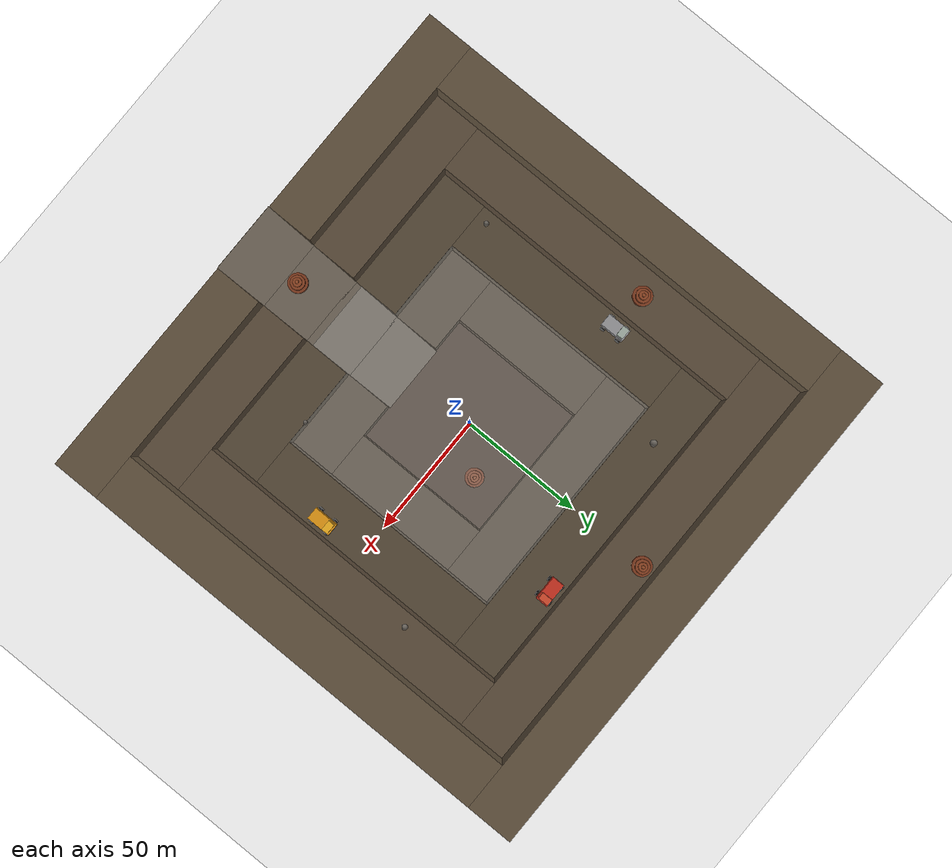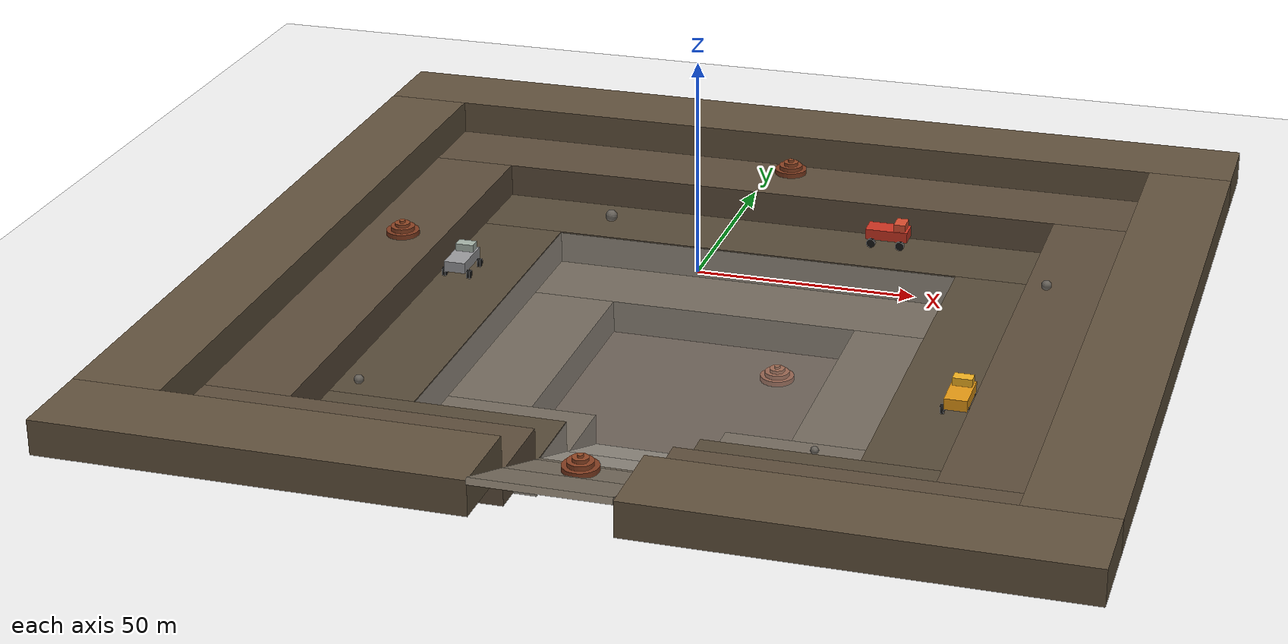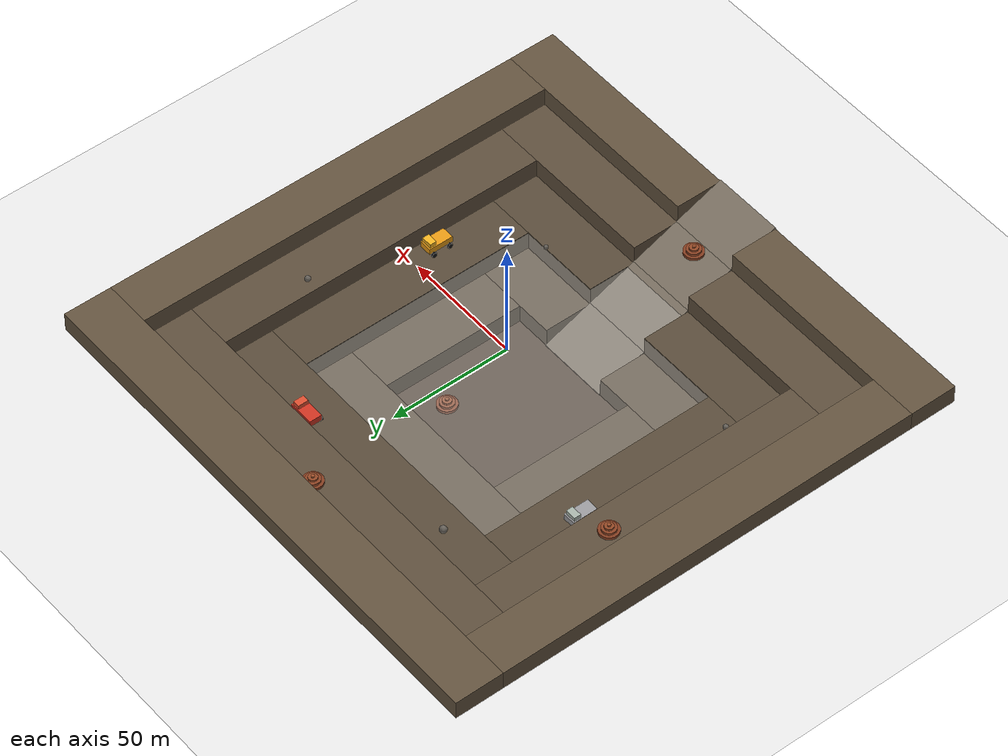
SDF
<?xml version="1.0"?>
<sdf version="1.9">
  <world name="iron_mine">

    <physics name="default_physics" type="ode">
      <max_step_size>0.004</max_step_size>
      <real_time_factor>1.0</real_time_factor>
      <real_time_update_rate>250</real_time_update_rate>
    </physics>

    <plugin filename="gz-sim-physics-system" name="gz::sim::systems::Physics"/>
    <plugin filename="gz-sim-user-commands-system" name="gz::sim::systems::UserCommands"/>
    <plugin filename="gz-sim-scene-broadcaster-system" name="gz::sim::systems::SceneBroadcaster"/>
    <plugin filename="gz-sim-sensors-system" name="gz::sim::systems::Sensors">
    <render_engine>ogre2</render_engine>
    </plugin>
    <plugin filename="gz-sim-contact-system" name="gz::sim::systems::Contact"/>

    <plugin
      filename="ignition-gazebo-particle-emitter2-system"
      name="ignition::gazebo::systems::ParticleEmitter2">
    </plugin>

    <light type="directional" name="sun">
      <pose>0 0 100 0 0 0</pose>
      <cast_shadows>true</cast_shadows>
      <diffuse>0.5 0.5 0.5 1.0</diffuse>
      <specular>0.1 0.1 0.1 1.0</specular>
      <direction>-0.4 0.3 -0.8</direction>
    </light>

    <model name="upper_bench_N">
      <static>true</static>
      <pose>0 100.0 -4.0 0 0 0</pose>
      <link name="link">
        <collision name="collision">
          <geometry><box><size>220 20.0 8</size></box></geometry>
        </collision>
        <visual name="visual">
          <geometry><box><size>220 20.0 8</size></box></geometry>
          <material>
            <ambient>0.30 0.24 0.18 1</ambient>
            <diffuse>0.38 0.32 0.24 1</diffuse>
          </material>
        </visual>
      </link>
      <plugin filename="ignition-gazebo-thermal-system" name="gz::sim::systems::Thermal">
        <temperature>308.0</temperature>
      </plugin>
    </model>

    <model name="upper_bench_E">
      <static>true</static>
      <pose>100.0 0 -4.0 0 0 0</pose>
      <link name="link">
        <collision name="collision">
          <geometry><box><size>20.0 180 8</size></box></geometry>
        </collision>
        <visual name="visual">
          <geometry><box><size>20.0 180 8</size></box></geometry>
          <material>
            <ambient>0.30 0.24 0.18 1</ambient>
            <diffuse>0.38 0.32 0.24 1</diffuse>
          </material>
        </visual>
      </link>
      <plugin filename="ignition-gazebo-thermal-system" name="gz::sim::systems::Thermal">
        <temperature>308.0</temperature>
      </plugin>
    </model>

    <model name="upper_bench_W">
      <static>true</static>
      <pose>-100.0 0 -4.0 0 0 0</pose>
      <link name="link">
        <collision name="collision">
          <geometry><box><size>20.0 180 8</size></box></geometry>
        </collision>
        <visual name="visual">
          <geometry><box><size>20.0 180 8</size></box></geometry>
          <material>
            <ambient>0.30 0.24 0.18 1</ambient>
            <diffuse>0.38 0.32 0.24 1</diffuse>
          </material>
        </visual>
      </link>
      <plugin filename="ignition-gazebo-thermal-system" name="gz::sim::systems::Thermal">
        <temperature>308.0</temperature>
      </plugin>
    </model>

    <model name="upper_bench_S_a">
      <static>true</static>
      <pose>-62.5 -100.0 -4.0 0 0 0</pose>
      <link name="link">
        <collision name="collision">
          <geometry><box><size>95.0 20.0 8</size></box></geometry>
        </collision>
        <visual name="visual">
          <geometry><box><size>95.0 20.0 8</size></box></geometry>
          <material>
            <ambient>0.30 0.24 0.18 1</ambient>
            <diffuse>0.38 0.32 0.24 1</diffuse>
          </material>
        </visual>
      </link>
      <plugin filename="ignition-gazebo-thermal-system" name="gz::sim::systems::Thermal">
        <temperature>308.0</temperature>
      </plugin>
    </model>

    <model name="upper_bench_S_b">
      <static>true</static>
      <pose>62.5 -100.0 -4.0 0 0 0</pose>
      <link name="link">
        <collision name="collision">
          <geometry><box><size>95.0 20.0 8</size></box></geometry>
        </collision>
        <visual name="visual">
          <geometry><box><size>95.0 20.0 8</size></box></geometry>
          <material>
            <ambient>0.30 0.24 0.18 1</ambient>
            <diffuse>0.38 0.32 0.24 1</diffuse>
          </material>
        </visual>
      </link>
      <plugin filename="ignition-gazebo-thermal-system" name="gz::sim::systems::Thermal">
        <temperature>308.0</temperature>
      </plugin>
    </model>

    <model name="upper_bench_ramp">
      <static>true</static>
      <pose>0 -100.0 -4.0 -0.3805063771123649 0 0</pose>
      <link name="link">
        <collision name="collision">
          <geometry><box><size>30.0 22.0 1.5</size></box></geometry>
        </collision>
        <visual name="visual">
          <geometry><box><size>30.0 22.0 1.5</size></box></geometry>
          <material>
            <ambient>0.42 0.38 0.34 1</ambient>
            <diffuse>0.50 0.46 0.40 1</diffuse>
          </material>
        </visual>
      </link>
      <plugin filename="ignition-gazebo-thermal-system" name="gz::sim::systems::Thermal">
        <temperature>310.0</temperature>
      </plugin>
    </model>

    <model name="mine_bench_1_N">
      <static>true</static>
      <pose>0 80.0 -12.0 0 0 0</pose>
      <link name="link">
        <collision name="collision">
          <geometry><box><size>180 20.0 8</size></box></geometry>
        </collision>
        <visual name="visual">
          <geometry><box><size>180 20.0 8</size></box></geometry>
          <material>
            <ambient>0.28 0.22 0.17 1</ambient>
            <diffuse>0.36 0.30 0.23 1</diffuse>
          </material>
        </visual>
      </link>
      <plugin filename="ignition-gazebo-thermal-system" name="gz::sim::systems::Thermal">
        <temperature>305.0</temperature>
      </plugin>
    </model>

    <model name="mine_bench_1_E">
      <static>true</static>
      <pose>80.0 0 -12.0 0 0 0</pose>
      <link name="link">
        <collision name="collision">
          <geometry><box><size>20.0 140 8</size></box></geometry>
        </collision>
        <visual name="visual">
          <geometry><box><size>20.0 140 8</size></box></geometry>
          <material>
            <ambient>0.28 0.22 0.17 1</ambient>
            <diffuse>0.36 0.30 0.23 1</diffuse>
          </material>
        </visual>
      </link>
      <plugin filename="ignition-gazebo-thermal-system" name="gz::sim::systems::Thermal">
        <temperature>305.0</temperature>
      </plugin>
    </model>

    <model name="mine_bench_1_W">
      <static>true</static>
      <pose>-80.0 0 -12.0 0 0 0</pose>
      <link name="link">
        <collision name="collision">
          <geometry><box><size>20.0 140 8</size></box></geometry>
        </collision>
        <visual name="visual">
          <geometry><box><size>20.0 140 8</size></box></geometry>
          <material>
            <ambient>0.28 0.22 0.17 1</ambient>
            <diffuse>0.36 0.30 0.23 1</diffuse>
          </material>
        </visual>
      </link>
      <plugin filename="ignition-gazebo-thermal-system" name="gz::sim::systems::Thermal">
        <temperature>305.0</temperature>
      </plugin>
    </model>

    <model name="mine_bench_1_S_a">
      <static>true</static>
      <pose>-52.5 -80.0 -12.0 0 0 0</pose>
      <link name="link">
        <collision name="collision">
          <geometry><box><size>75.0 20.0 8</size></box></geometry>
        </collision>
        <visual name="visual">
          <geometry><box><size>75.0 20.0 8</size></box></geometry>
          <material>
            <ambient>0.28 0.22 0.17 1</ambient>
            <diffuse>0.36 0.30 0.23 1</diffuse>
          </material>
        </visual>
      </link>
      <plugin filename="ignition-gazebo-thermal-system" name="gz::sim::systems::Thermal">
        <temperature>305.0</temperature>
      </plugin>
    </model>

    <model name="mine_bench_1_S_b">
      <static>true</static>
      <pose>52.5 -80.0 -12.0 0 0 0</pose>
      <link name="link">
        <collision name="collision">
          <geometry><box><size>75.0 20.0 8</size></box></geometry>
        </collision>
        <visual name="visual">
          <geometry><box><size>75.0 20.0 8</size></box></geometry>
          <material>
            <ambient>0.28 0.22 0.17 1</ambient>
            <diffuse>0.36 0.30 0.23 1</diffuse>
          </material>
        </visual>
      </link>
      <plugin filename="ignition-gazebo-thermal-system" name="gz::sim::systems::Thermal">
        <temperature>305.0</temperature>
      </plugin>
    </model>

    <model name="mine_bench_1_ramp">
      <static>true</static>
      <pose>0 -80.0 -12.0 -0.3805063771123649 0 0</pose>
      <link name="link">
        <collision name="collision">
          <geometry><box><size>30.0 22.0 1.5</size></box></geometry>
        </collision>
        <visual name="visual">
          <geometry><box><size>30.0 22.0 1.5</size></box></geometry>
          <material>
            <ambient>0.42 0.38 0.34 1</ambient>
            <diffuse>0.50 0.46 0.40 1</diffuse>
          </material>
        </visual>
      </link>
      <plugin filename="ignition-gazebo-thermal-system" name="gz::sim::systems::Thermal">
        <temperature>307.0</temperature>
      </plugin>
    </model>

    <model name="mine_bench_2_N">
      <static>true</static>
      <pose>0 60.0 -20.0 0 0 0</pose>
      <link name="link">
        <collision name="collision">
          <geometry><box><size>140 20.0 8</size></box></geometry>
        </collision>
        <visual name="visual">
          <geometry><box><size>140 20.0 8</size></box></geometry>
          <material>
            <ambient>0.26 0.21 0.16 1</ambient>
            <diffuse>0.34 0.29 0.22 1</diffuse>
          </material>
        </visual>
      </link>
      <plugin filename="ignition-gazebo-thermal-system" name="gz::sim::systems::Thermal">
        <temperature>303.0</temperature>
      </plugin>
    </model>

    <model name="mine_bench_2_E">
      <static>true</static>
      <pose>60.0 0 -20.0 0 0 0</pose>
      <link name="link">
        <collision name="collision">
          <geometry><box><size>20.0 100 8</size></box></geometry>
        </collision>
        <visual name="visual">
          <geometry><box><size>20.0 100 8</size></box></geometry>
          <material>
            <ambient>0.26 0.21 0.16 1</ambient>
            <diffuse>0.34 0.29 0.22 1</diffuse>
          </material>
        </visual>
      </link>
      <plugin filename="ignition-gazebo-thermal-system" name="gz::sim::systems::Thermal">
        <temperature>303.0</temperature>
      </plugin>
    </model>

    <model name="mine_bench_2_W">
      <static>true</static>
      <pose>-60.0 0 -20.0 0 0 0</pose>
      <link name="link">
        <collision name="collision">
          <geometry><box><size>20.0 100 8</size></box></geometry>
        </collision>
        <visual name="visual">
          <geometry><box><size>20.0 100 8</size></box></geometry>
          <material>
            <ambient>0.26 0.21 0.16 1</ambient>
            <diffuse>0.34 0.29 0.22 1</diffuse>
          </material>
        </visual>
      </link>
      <plugin filename="ignition-gazebo-thermal-system" name="gz::sim::systems::Thermal">
        <temperature>303.0</temperature>
      </plugin>
    </model>

    <model name="mine_bench_2_S_a">
      <static>true</static>
      <pose>-42.5 -60.0 -20.0 0 0 0</pose>
      <link name="link">
        <collision name="collision">
          <geometry><box><size>55.0 20.0 8</size></box></geometry>
        </collision>
        <visual name="visual">
          <geometry><box><size>55.0 20.0 8</size></box></geometry>
          <material>
            <ambient>0.26 0.21 0.16 1</ambient>
            <diffuse>0.34 0.29 0.22 1</diffuse>
          </material>
        </visual>
      </link>
      <plugin filename="ignition-gazebo-thermal-system" name="gz::sim::systems::Thermal">
        <temperature>303.0</temperature>
      </plugin>
    </model>

    <model name="mine_bench_2_S_b">
      <static>true</static>
      <pose>42.5 -60.0 -20.0 0 0 0</pose>
      <link name="link">
        <collision name="collision">
          <geometry><box><size>55.0 20.0 8</size></box></geometry>
        </collision>
        <visual name="visual">
          <geometry><box><size>55.0 20.0 8</size></box></geometry>
          <material>
            <ambient>0.26 0.21 0.16 1</ambient>
            <diffuse>0.34 0.29 0.22 1</diffuse>
          </material>
        </visual>
      </link>
      <plugin filename="ignition-gazebo-thermal-system" name="gz::sim::systems::Thermal">
        <temperature>303.0</temperature>
      </plugin>
    </model>

    <model name="mine_bench_2_ramp">
      <static>true</static>
      <pose>0 -60.0 -20.0 -0.3805063771123649 0 0</pose>
      <link name="link">
        <collision name="collision">
          <geometry><box><size>30.0 22.0 1.5</size></box></geometry>
        </collision>
        <visual name="visual">
          <geometry><box><size>30.0 22.0 1.5</size></box></geometry>
          <material>
            <ambient>0.42 0.38 0.34 1</ambient>
            <diffuse>0.50 0.46 0.40 1</diffuse>
          </material>
        </visual>
      </link>
      <plugin filename="ignition-gazebo-thermal-system" name="gz::sim::systems::Thermal">
        <temperature>305.0</temperature>
      </plugin>
    </model>

    <model name="mine_bench_3_N">
      <static>true</static>
      <pose>0 40.0 -28.0 0 0 0</pose>
      <link name="link">
        <collision name="collision">
          <geometry><box><size>100 20.0 8</size></box></geometry>
        </collision>
        <visual name="visual">
          <geometry><box><size>100 20.0 8</size></box></geometry>
          <material>
            <ambient>0.24 0.19 0.14 1</ambient>
            <diffuse>0.32 0.27 0.20 1</diffuse>
          </material>
        </visual>
      </link>
      <plugin filename="ignition-gazebo-thermal-system" name="gz::sim::systems::Thermal">
        <temperature>298.0</temperature>
      </plugin>
    </model>

    <model name="mine_bench_3_E">
      <static>true</static>
      <pose>40.0 0 -28.0 0 0 0</pose>
      <link name="link">
        <collision name="collision">
          <geometry><box><size>20.0 60 8</size></box></geometry>
        </collision>
        <visual name="visual">
          <geometry><box><size>20.0 60 8</size></box></geometry>
          <material>
            <ambient>0.24 0.19 0.14 1</ambient>
            <diffuse>0.32 0.27 0.20 1</diffuse>
          </material>
        </visual>
      </link>
      <plugin filename="ignition-gazebo-thermal-system" name="gz::sim::systems::Thermal">
        <temperature>298.0</temperature>
      </plugin>
    </model>

    <model name="mine_bench_3_W">
      <static>true</static>
      <pose>-40.0 0 -28.0 0 0 0</pose>
      <link name="link">
        <collision name="collision">
          <geometry><box><size>20.0 60 8</size></box></geometry>
        </collision>
        <visual name="visual">
          <geometry><box><size>20.0 60 8</size></box></geometry>
          <material>
            <ambient>0.24 0.19 0.14 1</ambient>
            <diffuse>0.32 0.27 0.20 1</diffuse>
          </material>
        </visual>
      </link>
      <plugin filename="ignition-gazebo-thermal-system" name="gz::sim::systems::Thermal">
        <temperature>298.0</temperature>
      </plugin>
    </model>

    <model name="mine_bench_3_S_a">
      <static>true</static>
      <pose>-32.5 -40.0 -28.0 0 0 0</pose>
      <link name="link">
        <collision name="collision">
          <geometry><box><size>35.0 20.0 8</size></box></geometry>
        </collision>
        <visual name="visual">
          <geometry><box><size>35.0 20.0 8</size></box></geometry>
          <material>
            <ambient>0.24 0.19 0.14 1</ambient>
            <diffuse>0.32 0.27 0.20 1</diffuse>
          </material>
        </visual>
      </link>
      <plugin filename="ignition-gazebo-thermal-system" name="gz::sim::systems::Thermal">
        <temperature>298.0</temperature>
      </plugin>
    </model>

    <model name="mine_bench_3_S_b">
      <static>true</static>
      <pose>32.5 -40.0 -28.0 0 0 0</pose>
      <link name="link">
        <collision name="collision">
          <geometry><box><size>35.0 20.0 8</size></box></geometry>
        </collision>
        <visual name="visual">
          <geometry><box><size>35.0 20.0 8</size></box></geometry>
          <material>
            <ambient>0.24 0.19 0.14 1</ambient>
            <diffuse>0.32 0.27 0.20 1</diffuse>
          </material>
        </visual>
      </link>
      <plugin filename="ignition-gazebo-thermal-system" name="gz::sim::systems::Thermal">
        <temperature>298.0</temperature>
      </plugin>
    </model>

    <model name="mine_bench_3_ramp">
      <static>true</static>
      <pose>0 -40.0 -28.0 -0.3805063771123649 0 0</pose>
      <link name="link">
        <collision name="collision">
          <geometry><box><size>30.0 22.0 1.5</size></box></geometry>
        </collision>
        <visual name="visual">
          <geometry><box><size>30.0 22.0 1.5</size></box></geometry>
          <material>
            <ambient>0.42 0.38 0.34 1</ambient>
            <diffuse>0.50 0.46 0.40 1</diffuse>
          </material>
        </visual>
      </link>
      <plugin filename="ignition-gazebo-thermal-system" name="gz::sim::systems::Thermal">
        <temperature>300.0</temperature>
      </plugin>
    </model>

    <model name="mine_floor">
      <static>true</static>
      <pose>0 0 -33 0 0 0</pose>
      <link name="floor_link">
        <collision name="collision">
          <geometry><box><size>60 60 2</size></box></geometry>
        </collision>
        <visual name="visual">
          <geometry><box><size>60 60 2</size></box></geometry>
          <material>
            <ambient>0.20 0.16 0.12 1</ambient>
            <diffuse>0.28 0.22 0.17 1</diffuse>
          </material>
        </visual>
      </link>
      <plugin filename="ignition-gazebo-thermal-system" name="gz::sim::systems::Thermal">
        <temperature>293.0</temperature>
      </plugin>
    </model>

    <include>
      <uri>model://asphalt_plane</uri>
      <name>haul_road_1</name>
      <pose>55 0 -16 0 0 0</pose>
      <plugin filename="ignition-gazebo-thermal-system" name="gz::sim::systems::Thermal">
        <temperature>328.0</temperature>
      </plugin>
    </include>
    <include>
      <uri>model://asphalt_plane</uri>
      <name>haul_road_2</name>
      <pose>-55 0 -16 0 0 0</pose>
      <plugin filename="ignition-gazebo-thermal-system" name="gz::sim::systems::Thermal">
        <temperature>328.0</temperature>
      </plugin>
    </include>
    <include>
      <uri>model://asphalt_plane</uri>
      <name>haul_road_3</name>
      <pose>0 55 -16 0 0 1.5708</pose>
      <plugin filename="ignition-gazebo-thermal-system" name="gz::sim::systems::Thermal">
        <temperature>328.0</temperature>
      </plugin>
    </include>

    <model name="boulder_1">
      <static>true</static>
      <pose>75 30 -6.8 0.2 0.1 0.4</pose>
      <link name="link">
        <collision name="collision"><geometry><sphere><radius>1.2</radius></sphere></geometry></collision>
        <visual name="visual">
          <geometry><sphere><radius>1.2</radius></sphere></geometry>
          <material><ambient>0.30 0.28 0.25 1</ambient><diffuse>0.40 0.38 0.35 1</diffuse></material>
        </visual>
      </link>
      <plugin filename="ignition-gazebo-thermal-system" name="gz::sim::systems::Thermal">
        <temperature>315.0</temperature>
      </plugin>
    </model>

    <model name="boulder_2">
      <static>true</static>
      <pose>-40 60 -14.5 0 0.3 1.0</pose>
      <link name="link">
        <collision name="collision"><geometry><sphere><radius>1.5</radius></sphere></geometry></collision>
        <visual name="visual">
          <geometry><sphere><radius>1.5</radius></sphere></geometry>
          <material><ambient>0.30 0.28 0.25 1</ambient><diffuse>0.40 0.38 0.35 1</diffuse></material>
        </visual>
      </link>
      <plugin filename="ignition-gazebo-thermal-system" name="gz::sim::systems::Thermal">
        <temperature>300.0</temperature>
      </plugin>
    </model>

    <model name="boulder_3">
      <static>true</static>
      <pose>40 -50 -15.1 0.1 0 2.1</pose>
      <link name="link">
        <collision name="collision"><geometry><sphere><radius>0.9</radius></sphere></geometry></collision>
        <visual name="visual">
          <geometry><sphere><radius>0.9</radius></sphere></geometry>
          <material><ambient>0.30 0.28 0.25 1</ambient><diffuse>0.40 0.38 0.35 1</diffuse></material>
        </visual>
      </link>
      <plugin filename="ignition-gazebo-thermal-system" name="gz::sim::systems::Thermal">
        <temperature>325.0</temperature>
      </plugin>
    </model>

    <model name="boulder_4">
      <static>true</static>
      <pose>-65 -45 -14.9 0.1 0.2 0.8</pose>
      <link name="link">
        <collision name="collision"><geometry><sphere><radius>1.1</radius></sphere></geometry></collision>
        <visual name="visual">
          <geometry><sphere><radius>1.1</radius></sphere></geometry>
          <material><ambient>0.30 0.28 0.25 1</ambient><diffuse>0.40 0.38 0.35 1</diffuse></material>
        </visual>
      </link>
      <plugin filename="ignition-gazebo-thermal-system" name="gz::sim::systems::Thermal">
        <temperature>292.0</temperature>
      </plugin>
    </model>

    <include>
      <uri>model://ore_stockpile</uri>
      <name>ore_stockpile_1</name>
      <pose>-80 20 -8 0 0 0.3</pose>
      <plugin filename="ignition-gazebo-thermal-system" name="gz::sim::systems::Thermal">
        <temperature>302.0</temperature>
      </plugin>
    </include>
    <include>
      <uri>model://ore_stockpile</uri>
      <name>ore_stockpile_2</name>
      <pose>0 85 -8 0 0 1.1</pose>
      <plugin filename="ignition-gazebo-thermal-system" name="gz::sim::systems::Thermal">
        <temperature>298.0</temperature>
      </plugin>
    </include>
    <include>
      <uri>model://ore_stockpile</uri>
      <name>ore_stockpile_3</name>
      <pose>0 -85 -8 0 0 2.0</pose>
      <plugin filename="ignition-gazebo-thermal-system" name="gz::sim::systems::Thermal">
        <temperature>310.0</temperature>
      </plugin>
    </include>
    <include>
      <uri>model://ore_stockpile</uri>
      <name>ore_stockpile_floor</name>
      <pose>15 15 -32 0 0 0.5</pose>
      <plugin filename="ignition-gazebo-thermal-system" name="gz::sim::systems::Thermal">
        <temperature>295.0</temperature>
      </plugin>
    </include>

    <!-- parked_truck_cold (now hot): beside haul_road_2, near west wall -->
    <model name="parked_truck_cold">
      <static>true</static>
      <pose>-65 20 -16 0 0 1.5708</pose>
      <link name="link">
        <collision name="chassis_collision">
          <pose>0 0 3.1 0 0 0</pose>
          <geometry><box><size>10.4 5.2 2.6</size></box></geometry>
        </collision>
        <visual name="chassis_visual">
          <pose>0 0 3.1 0 0 0</pose>
          <geometry><box><size>10.4 5.2 2.6</size></box></geometry>
          <material><ambient>0.55 0.55 0.58 1</ambient><diffuse>0.60 0.60 0.61 1</diffuse></material>
        </visual>
        <collision name="cab_collision">
          <pose>3.2 0 5.3 0 0 0</pose>
          <geometry><box><size>2.8 4.4 1.8</size></box></geometry>
        </collision>
        <visual name="cab_visual">
          <pose>3.2 0 5.3 0 0 0</pose>
          <geometry><box><size>2.8 4.4 1.8</size></box></geometry>
          <material><ambient>0.60 0.65 0.63 1</ambient><diffuse>0.65 0.70 0.66 1</diffuse></material>
        </visual>
        <collision name="fl_wheel_collision">
          <pose>3.6 3.1 1.1 -1.5708 0 0</pose>
          <geometry><cylinder><radius>1.1</radius><length>0.8</length></cylinder></geometry>
        </collision>
        <visual name="fl_wheel_visual">
          <pose>3.6 3.1 1.1 -1.5708 0 0</pose>
          <geometry><cylinder><radius>1.1</radius><length>0.8</length></cylinder></geometry>
          <material><ambient>0.05 0.05 0.05 1</ambient><diffuse>0.08 0.08 0.08 1</diffuse></material>
        </visual>
        <collision name="fr_wheel_collision">
          <pose>3.6 -3.1 1.1 -1.5708 0 0</pose>
          <geometry><cylinder><radius>1.1</radius><length>0.8</length></cylinder></geometry>
        </collision>
        <visual name="fr_wheel_visual">
          <pose>3.6 -3.1 1.1 -1.5708 0 0</pose>
          <geometry><cylinder><radius>1.1</radius><length>0.8</length></cylinder></geometry>
          <material><ambient>0.05 0.05 0.05 1</ambient><diffuse>0.08 0.08 0.08 1</diffuse></material>
        </visual>
        <collision name="rl_wheel_collision">
          <pose>-3.6 3.1 1.1 -1.5708 0 0</pose>
          <geometry><cylinder><radius>1.1</radius><length>0.8</length></cylinder></geometry>
        </collision>
        <visual name="rl_wheel_visual">
          <pose>-3.6 3.1 1.1 -1.5708 0 0</pose>
          <geometry><cylinder><radius>1.1</radius><length>0.8</length></cylinder></geometry>
          <material><ambient>0.05 0.05 0.05 1</ambient><diffuse>0.08 0.08 0.08 1</diffuse></material>
        </visual>
        <collision name="rr_wheel_collision">
          <pose>-3.6 -3.1 1.1 -1.5708 0 0</pose>
          <geometry><cylinder><radius>1.1</radius><length>0.8</length></cylinder></geometry>
        </collision>
        <visual name="rr_wheel_visual">
          <pose>-3.6 -3.1 1.1 -1.5708 0 0</pose>
          <geometry><cylinder><radius>1.1</radius><length>0.8</length></cylinder></geometry>
          <material><ambient>0.05 0.05 0.05 1</ambient><diffuse>0.08 0.08 0.08 1</diffuse></material>
        </visual>
      </link>
      <plugin filename="ignition-gazebo-thermal-system" name="gz::sim::systems::Thermal">
        <temperature>345.0</temperature>
      </plugin>
    </model>

    <!-- parked_truck_idle (now hot): beside haul_road_1, near east wall -->
    <model name="parked_truck_idle">
      <static>true</static>
      <pose>65 -20 -16 0 0 1.5708</pose>
      <link name="link">
        <collision name="chassis_collision">
          <pose>0 0 3.1 0 0 0</pose>
          <geometry><box><size>10.4 5.2 2.6</size></box></geometry>
        </collision>
        <visual name="chassis_visual">
          <pose>0 0 3.1 0 0 0</pose>
          <geometry><box><size>10.4 5.2 2.6</size></box></geometry>
          <material><ambient>0.85 0.55 0.05 1</ambient><diffuse>0.90 0.60 0.08 1</diffuse></material>
        </visual>
        <collision name="cab_collision">
          <pose>3.2 0 5.3 0 0 0</pose>
          <geometry><box><size>2.8 4.4 1.8</size></box></geometry>
        </collision>
        <visual name="cab_visual">
          <pose>3.2 0 5.3 0 0 0</pose>
          <geometry><box><size>2.8 4.4 1.8</size></box></geometry>
          <material><ambient>0.90 0.65 0.10 1</ambient><diffuse>0.95 0.70 0.13 1</diffuse></material>
        </visual>
        <collision name="fl_wheel_collision">
          <pose>3.6 3.1 1.1 -1.5708 0 0</pose>
          <geometry><cylinder><radius>1.1</radius><length>0.8</length></cylinder></geometry>
        </collision>
        <visual name="fl_wheel_visual">
          <pose>3.6 3.1 1.1 -1.5708 0 0</pose>
          <geometry><cylinder><radius>1.1</radius><length>0.8</length></cylinder></geometry>
          <material><ambient>0.05 0.05 0.05 1</ambient><diffuse>0.08 0.08 0.08 1</diffuse></material>
        </visual>
        <collision name="fr_wheel_collision">
          <pose>3.6 -3.1 1.1 -1.5708 0 0</pose>
          <geometry><cylinder><radius>1.1</radius><length>0.8</length></cylinder></geometry>
        </collision>
        <visual name="fr_wheel_visual">
          <pose>3.6 -3.1 1.1 -1.5708 0 0</pose>
          <geometry><cylinder><radius>1.1</radius><length>0.8</length></cylinder></geometry>
          <material><ambient>0.05 0.05 0.05 1</ambient><diffuse>0.08 0.08 0.08 1</diffuse></material>
        </visual>
        <collision name="rl_wheel_collision">
          <pose>-3.6 3.1 1.1 -1.5708 0 0</pose>
          <geometry><cylinder><radius>1.1</radius><length>0.8</length></cylinder></geometry>
        </collision>
        <visual name="rl_wheel_visual">
          <pose>-3.6 3.1 1.1 -1.5708 0 0</pose>
          <geometry><cylinder><radius>1.1</radius><length>0.8</length></cylinder></geometry>
          <material><ambient>0.05 0.05 0.05 1</ambient><diffuse>0.08 0.08 0.08 1</diffuse></material>
        </visual>
        <collision name="rr_wheel_collision">
          <pose>-3.6 -3.1 1.1 -1.5708 0 0</pose>
          <geometry><cylinder><radius>1.1</radius><length>0.8</length></cylinder></geometry>
        </collision>
        <visual name="rr_wheel_visual">
          <pose>-3.6 -3.1 1.1 -1.5708 0 0</pose>
          <geometry><cylinder><radius>1.1</radius><length>0.8</length></cylinder></geometry>
          <material><ambient>0.05 0.05 0.05 1</ambient><diffuse>0.08 0.08 0.08 1</diffuse></material>
        </visual>
      </link>
      <plugin filename="ignition-gazebo-thermal-system" name="gz::sim::systems::Thermal">
        <temperature>345.0</temperature>
      </plugin>
    </model>

    <!-- parked_truck_hot: beside haul_road_3, near north wall -->
    <model name="parked_truck_hot">
      <static>true</static>
      <pose>30 65 -16 0 0 0</pose>
      <link name="link">
        <collision name="chassis_collision">
          <pose>0 0 3.1 0 0 0</pose>
          <geometry><box><size>10.4 5.2 2.6</size></box></geometry>
        </collision>
        <visual name="chassis_visual">
          <pose>0 0 3.1 0 0 0</pose>
          <geometry><box><size>10.4 5.2 2.6</size></box></geometry>
          <material><ambient>0.75 0.15 0.10 1</ambient><diffuse>0.80 0.20 0.13 1</diffuse></material>
        </visual>
        <collision name="cab_collision">
          <pose>3.2 0 5.3 0 0 0</pose>
          <geometry><box><size>2.8 4.4 1.8</size></box></geometry>
        </collision>
        <visual name="cab_visual">
          <pose>3.2 0 5.3 0 0 0</pose>
          <geometry><box><size>2.8 4.4 1.8</size></box></geometry>
          <material><ambient>0.80 0.25 0.15 1</ambient><diffuse>0.85 0.30 0.18 1</diffuse></material>
        </visual>
        <collision name="fl_wheel_collision">
          <pose>3.6 3.1 1.1 -1.5708 0 0</pose>
          <geometry><cylinder><radius>1.1</radius><length>0.8</length></cylinder></geometry>
        </collision>
        <visual name="fl_wheel_visual">
          <pose>3.6 3.1 1.1 -1.5708 0 0</pose>
          <geometry><cylinder><radius>1.1</radius><length>0.8</length></cylinder></geometry>
          <material><ambient>0.05 0.05 0.05 1</ambient><diffuse>0.08 0.08 0.08 1</diffuse></material>
        </visual>
        <collision name="fr_wheel_collision">
          <pose>3.6 -3.1 1.1 -1.5708 0 0</pose>
          <geometry><cylinder><radius>1.1</radius><length>0.8</length></cylinder></geometry>
        </collision>
        <visual name="fr_wheel_visual">
          <pose>3.6 -3.1 1.1 -1.5708 0 0</pose>
          <geometry><cylinder><radius>1.1</radius><length>0.8</length></cylinder></geometry>
          <material><ambient>0.05 0.05 0.05 1</ambient><diffuse>0.08 0.08 0.08 1</diffuse></material>
        </visual>
        <collision name="rl_wheel_collision">
          <pose>-3.6 3.1 1.1 -1.5708 0 0</pose>
          <geometry><cylinder><radius>1.1</radius><length>0.8</length></cylinder></geometry>
        </collision>
        <visual name="rl_wheel_visual">
          <pose>-3.6 3.1 1.1 -1.5708 0 0</pose>
          <geometry><cylinder><radius>1.1</radius><length>0.8</length></cylinder></geometry>
          <material><ambient>0.05 0.05 0.05 1</ambient><diffuse>0.08 0.08 0.08 1</diffuse></material>
        </visual>
        <collision name="rr_wheel_collision">
          <pose>-3.6 -3.1 1.1 -1.5708 0 0</pose>
          <geometry><cylinder><radius>1.1</radius><length>0.8</length></cylinder></geometry>
        </collision>
        <visual name="rr_wheel_visual">
          <pose>-3.6 -3.1 1.1 -1.5708 0 0</pose>
          <geometry><cylinder><radius>1.1</radius><length>0.8</length></cylinder></geometry>
          <material><ambient>0.05 0.05 0.05 1</ambient><diffuse>0.08 0.08 0.08 1</diffuse></material>
        </visual>
      </link>
      <plugin filename="ignition-gazebo-thermal-system" name="gz::sim::systems::Thermal">
        <temperature>345.0</temperature>
      </plugin>
    </model>

    <include>
      <uri>model://fog_generator</uri>
      <name>mine_fog</name>
      <pose>0 0 -20 0 1.5707 0</pose>
    </include>

  </world>
</sdf>

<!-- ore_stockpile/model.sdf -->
<sdf version="1.9">
  <model name="ore_stockpile">
    <static>true</static>
    <link name="pile">
      <collision name="c0">
        <pose>0 0 0.6 0 0 0</pose>
        <geometry><cylinder><radius>4.0</radius><length>1.2</length></cylinder></geometry>
      </collision>
      <visual name="v0">
        <pose>0 0 0.6 0 0 0</pose>
        <geometry><cylinder><radius>4.0</radius><length>1.2</length></cylinder></geometry>
        <material><ambient>0.42 0.19 0.1 1</ambient><diffuse>0.5 0.23 0.12 1</diffuse></material>
      </visual>

      <collision name="c1">
        <pose>0 0 1.7 0 0 0</pose>
        <geometry><cylinder><radius>2.9</radius><length>1.0</length></cylinder></geometry>
      </collision>
      <visual name="v1">
        <pose>0 0 1.7 0 0 0</pose>
        <geometry><cylinder><radius>2.9</radius><length>1.0</length></cylinder></geometry>
        <material><ambient>0.45 0.21 0.11 1</ambient><diffuse>0.53 0.25 0.13 1</diffuse></material>
      </visual>

      <collision name="c2">
        <pose>0 0 2.6 0 0 0</pose>
        <geometry><cylinder><radius>1.8</radius><length>0.8</length></cylinder></geometry>
      </collision>
      <visual name="v2">
        <pose>0 0 2.6 0 0 0</pose>
        <geometry><cylinder><radius>1.8</radius><length>0.8</length></cylinder></geometry>
        <material><ambient>0.48 0.23 0.12 1</ambient><diffuse>0.56 0.27 0.14 1</diffuse></material>
      </visual>

      <collision name="c3">
        <pose>0 0 3.3 0 0 0</pose>
        <geometry><cylinder><radius>0.7</radius><length>0.6</length></cylinder></geometry>
      </collision>
      <visual name="v3">
        <pose>0 0 3.3 0 0 0</pose>
        <geometry><cylinder><radius>0.7</radius><length>0.6</length></cylinder></geometry>
        <material><ambient>0.5 0.25 0.13 1</ambient><diffuse>0.58 0.29 0.15 1</diffuse></material>
      </visual>
    </link>
  </model>
</sdf>

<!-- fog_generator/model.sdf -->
<sdf version="1.6">
    <model name="fog_generator">
        <!-- Rotated -90 deg pitch so local X is World +Z -->
        <pose>0 0 0 0 0 0</pose>
        <static>true</static>
        <link name="fog_link">
            <particle_emitter name="emitter" type="box">
                <emitting>true</emitting>

                <!-- [Local X (Height), Local Y (Width), Local Z (Length)] -->
                <!-- 15m deep layer, covering 170m x 170m across the pit -->
                <size>170 170 15</size>

                <!-- Large cloud puffs so they blend into an even carpet -->
                <particle_size>18 18 8</particle_size>
                <lifetime>35</lifetime>

                <!-- Very low velocity keeps fog resting in the pit floor -->
                <min_velocity>0.01</min_velocity>
                <max_velocity>0.05</max_velocity>

                <!-- Gentle expansion to merge overlapping clouds -->
                <scale_rate>0.3</scale_rate>
                <rate>25</rate>

                <material>
                    <!-- Dusty brownish-gray tone typical for iron ore mines -->
                    <diffuse>0.68 0.62 0.54 1.0</diffuse>
                    <specular>0.05 0.05 0.05 1.0</specular>
                    <pbr>
                        <metal>
                            <albedo_map>/home/hyper_engine/mineRakshak/src/dump_truck_description/models/fog_generator/materials/textures/fog.png</albedo_map>
                        </metal>
                    </pbr>
                </material>
                <color_range_image>/home/hyper_engine/mineRakshak/src/dump_truck_description/models/fog_generator/materials/textures/fogcolors.png</color_range_image>
            </particle_emitter>
        </link>
    </model>
</sdf>
